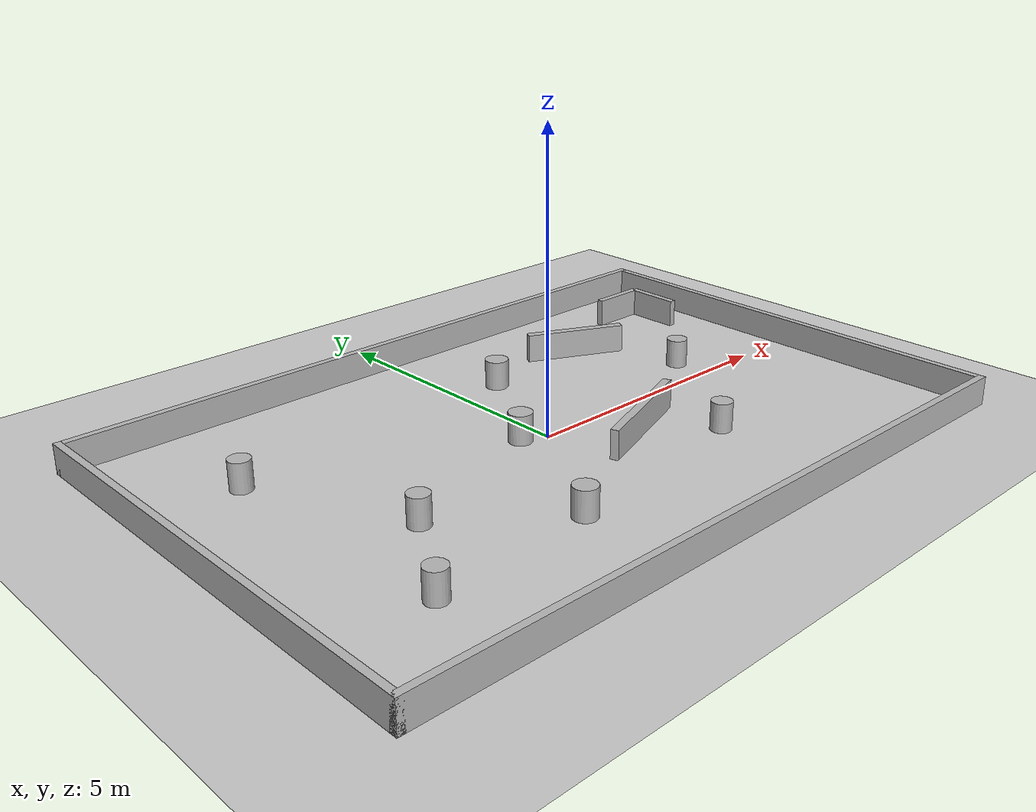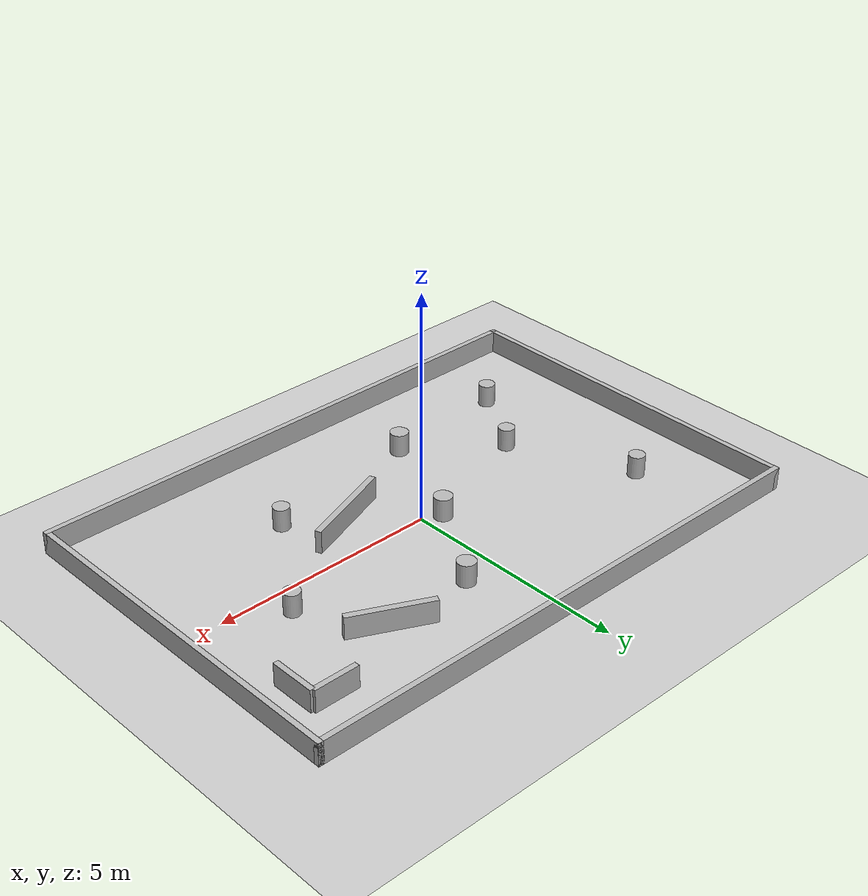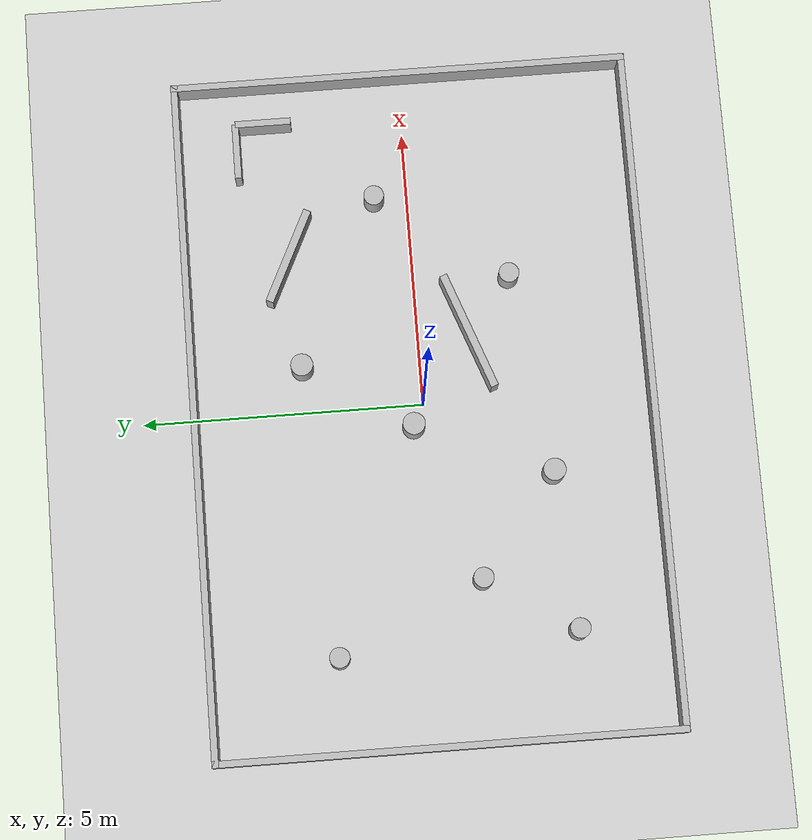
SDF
<?xml version='1.0' encoding='ASCII'?>
<sdf version='1.6'>
  <world name='obstacles_world'>
    <gravity>0 0 -9.8</gravity>
    <physics type='ode'>
      <max_step_size>0.01</max_step_size>
      <real_time_factor>1</real_time_factor>
      <max_contacts>10</max_contacts>
    </physics>
  <plugin filename="gz-sim-physics-system"
          name="gz::sim::systems::Physics"/>

  <plugin filename="gz-sim-user-commands-system"
          name="gz::sim::systems::UserCommands"/>

  <plugin filename="gz-sim-scene-broadcaster-system"
          name="gz::sim::systems::SceneBroadcaster"/>

  <!-- TĆ¼m kamera / lidar vb sensĆ¶rler iĆ§in -->
  <plugin filename="gz-sim-sensors-system"
          name="gz::sim::systems::Sensors">
    <render_engine>ogre2</render_engine>
  </plugin>

  <!-- IMU iĆ§in gerekli sistem pluginā€™i -->
  <plugin filename="gz-sim-imu-system"
          name="gz::sim::systems::Imu"/>

    <gui fullscreen="0">

      <!-- 3D scene -->
      <plugin filename="GzScene3D" name="3D View">
        <ignition-gui>
          <title>3D View</title>
          <property type="bool" key="showTitleBar">false</property>
          <property type="string" key="state">docked</property>
        </ignition-gui>

        <engine>ogre2</engine>
        <scene>scene</scene>
        <ambient_light>0.4 0.4 0.4</ambient_light>
        <background_color>0.8 0.8 0.8</background_color>
        <camera_pose>0.0 -6.0 4.0 0.0 0.42 1.57</camera_pose>
      </plugin>

      <!-- World control -->
      <plugin filename="WorldControl" name="World control">
        <ignition-gui>
          <title>World control</title>
          <property type="bool" key="showTitleBar">false</property>
          <property type="bool" key="resizable">false</property>
          <property type="double" key="height">72</property>
          <property type="double" key="width">121</property>
          <property type="double" key="z">1</property>

          <property type="string" key="state">floating</property>
          <anchors target="3D View">
            <line own="left" target="left"/>
            <line own="bottom" target="bottom"/>
          </anchors>
        </ignition-gui>

        <play_pause>true</play_pause>
        <step>true</step>
        <start_paused>true</start_paused>

      </plugin>

      <!-- World statistics -->
      <plugin filename="WorldStats" name="World stats">
        <ignition-gui>
          <title>World stats</title>
          <property type="bool" key="showTitleBar">false</property>
          <property type="bool" key="resizable">false</property>
          <property type="double" key="height">110</property>
          <property type="double" key="width">290</property>
          <property type="double" key="z">1</property>

          <property type="string" key="state">floating</property>
          <anchors target="3D View">
            <line own="right" target="right"/>
            <line own="bottom" target="bottom"/>
          </anchors>
        </ignition-gui>

        <sim_time>true</sim_time>
        <real_time>true</real_time>
        <real_time_factor>true</real_time_factor>
        <iterations>true</iterations>
      </plugin>

      <plugin filename="TransformControl" name="Transform control">
          <ignition-gui>
              <property type="bool" key="showTitleBar">false</property>
              <property key="x" type="double">0</property>
              <property key="y" type="double">0</property>
              <property key="width" type="double">250</property>
              <property key="height" type="double">50</property>
              <property key="state" type="string">floating</property>
              <property key="cardBackground" type="string">#666666</property>
          </ignition-gui>
      </plugin>
      <plugin filename="Shapes" name="Shapes">
          <ignition-gui>
              <property type="bool" key="showTitleBar">false</property>
              <property key="x" type="double">250</property>
              <property key="y" type="double">0</property>
              <property key="width" type="double">150</property>
              <property key="height" type="double">50</property>
              <property key="state" type="string">floating</property>
              <property key="cardBackground" type="string">#666666</property>
          </ignition-gui>
      </plugin>
      <plugin filename="Screenshot" name="Screenshot">
          <ignition-gui>
              <property type="bool" key="showTitleBar">false</property>
              <property key="x" type="double">400</property>
              <property key="y" type="double">0</property>
              <property key="width" type="double">50</property>
              <property key="height" type="double">50</property>
              <property key="state" type="string">floating</property>
              <property key="cardBackground" type="string">#666666</property>
          </ignition-gui>
      </plugin>
      <plugin filename="ComponentInspector" name="Component inspector">
          <ignition-gui>
              <property key="x" type="double">0</property>
              <property key="y" type="double">0</property>
              <property key="width" type="double">400</property>
              <property key="height" type="double">375</property>
              <property key="state" type="string">docked_collapsed</property>
          </ignition-gui>
      </plugin>
      <plugin filename="EntityTree" name="Entity tree">
          <ignition-gui>
              <property key="x" type="double">0</property>
              <property key="y" type="double">0</property>
              <property key="width" type="double">400</property>
              <property key="height" type="double">375</property>
              <property key="state" type="string">docked_collapsed</property>
          </ignition-gui>
      </plugin>
      <plugin filename="Teleop" name="Teleop">
          <ignition-gui>
              <property key="x" type="double">0</property>
              <property key="y" type="double">0</property>
              <property key="width" type="double">400</property>
              <property key="height" type="double">900</property>
              <property key="state" type="string">docked</property>
          </ignition-gui>
          <topic>/cmd_vel</topic>
      </plugin>
    </gui>

    <scene>
      <ambient>1 1 1 1</ambient>
      <background>0.3 0.7 0.9 1</background>
      <shadows>0</shadows>
      <grid>false</grid>
    </scene>

    <light type="directional" name="sun">
      <cast_shadows>0</cast_shadows>
      <pose>-5 -3 10 0 0 0</pose>
      <diffuse>1 1 1 1</diffuse>
      <specular>1 1 1 1</specular>
      <direction>0 0 -1</direction>
    </light>

    <model name='ground_plane'>
      <static>true</static>
      <link name='link'>
        <collision name='collision'>
          <geometry>
            <plane>
              <normal>0 0 1</normal>
              <size>100 100</size>
            </plane>
          </geometry>
          <surface>
            <friction>
              <ode/>
            </friction>
            <bounce/>
            <contact/>
          </surface>
        </collision>
        <visual name='visual'>
          <geometry>
            <plane>
              <normal>0 0 1</normal>
              <size>100 100</size>
            </plane>
          </geometry>
          <material>
            <ambient>0.8 0.8 0.8 1</ambient>
            <diffuse>0.8 0.8 0.8 1</diffuse>
            <specular>0.8 0.8 0.8 1</specular>
          </material>
        </visual>
        <pose>0 0 0 0 -0 0</pose>
        <inertial>
          <pose>0 0 0 0 -0 0</pose>
          <mass>1</mass>
          <inertia>
            <ixx>1</ixx>
            <ixy>0</ixy>
            <ixz>0</ixz>
            <iyy>1</iyy>
            <iyz>0</iyz>
            <izz>1</izz>
          </inertia>
        </inertial>
        <enable_wind>false</enable_wind>
      </link>
      <pose>0 0 0 0 -0 0</pose>
      <self_collide>false</self_collide>
    </model>

    <model name="boundary_walls">
      <static>true</static>

      <!-- Larger test area: x = [-6, 6], y = [-4, 4] -->
      <link name="north_wall">
        <pose>0 4.06 0.25 0 0 0</pose>
        <collision name="col">
          <geometry><box><size>12.24 0.12 0.50</size></box></geometry>
        </collision>
        <visual name="vis">
          <geometry><box><size>12.24 0.12 0.50</size></box></geometry>
        </visual>
      </link>

      <link name="south_wall">
        <pose>0 -4.06 0.25 0 0 0</pose>
        <collision name="col">
          <geometry><box><size>12.24 0.12 0.50</size></box></geometry>
        </collision>
        <visual name="vis">
          <geometry><box><size>12.24 0.12 0.50</size></box></geometry>
        </visual>
      </link>

      <link name="east_wall">
        <pose>6.06 0 0.25 0 0 0</pose>
        <collision name="col">
          <geometry><box><size>0.12 8.24 0.50</size></box></geometry>
        </collision>
        <visual name="vis">
          <geometry><box><size>0.12 8.24 0.50</size></box></geometry>
        </visual>
      </link>

      <link name="west_wall">
        <pose>-6.06 0 0.25 0 0 0</pose>
        <collision name="col">
          <geometry><box><size>0.12 8.24 0.50</size></box></geometry>
        </collision>
        <visual name="vis">
          <geometry><box><size>0.12 8.24 0.50</size></box></geometry>
        </visual>
      </link>
    </model>

    <!-- Navigation-friendly obstacle set:
         - not too symmetric
         - enough space for A* to find alternatives
         - good for recovery / replanning tests
    -->
    <model name="navigation_test_obstacles">
      <static>true</static>

      <!-- Left-side sparse cylinders -->
      <link name="cyl_left_1">
        <pose>-4.2 -2.4 0.25 0 0 0</pose>
        <collision name="col"><geometry><cylinder><radius>0.18</radius><length>0.50</length></cylinder></geometry></collision>
        <visual name="vis"><geometry><cylinder><radius>0.18</radius><length>0.50</length></cylinder></geometry></visual>
      </link>

      <link name="cyl_left_2">
        <pose>-3.2 -0.8 0.25 0 0 0</pose>
        <collision name="col"><geometry><cylinder><radius>0.18</radius><length>0.50</length></cylinder></geometry></collision>
        <visual name="vis"><geometry><cylinder><radius>0.18</radius><length>0.50</length></cylinder></geometry></visual>
      </link>

      <link name="cyl_left_3">
        <pose>-4.4 1.8 0.25 0 0 0</pose>
        <collision name="col"><geometry><cylinder><radius>0.18</radius><length>0.50</length></cylinder></geometry></collision>
        <visual name="vis"><geometry><cylinder><radius>0.18</radius><length>0.50</length></cylinder></geometry></visual>
      </link>

      <!-- Middle staggered obstacles -->
      <link name="cyl_mid_1">
        <pose>-1.4 -2.2 0.25 0 0 0</pose>
        <collision name="col"><geometry><cylinder><radius>0.20</radius><length>0.50</length></cylinder></geometry></collision>
        <visual name="vis"><geometry><cylinder><radius>0.20</radius><length>0.50</length></cylinder></geometry></visual>
      </link>

      <link name="cyl_mid_2">
        <pose>-0.4 0.2 0.25 0 0 0</pose>
        <collision name="col"><geometry><cylinder><radius>0.20</radius><length>0.50</length></cylinder></geometry></collision>
        <visual name="vis"><geometry><cylinder><radius>0.20</radius><length>0.50</length></cylinder></geometry></visual>
      </link>

      <link name="cyl_mid_3">
        <pose>0.8 2.1 0.25 0 0 0</pose>
        <collision name="col"><geometry><cylinder><radius>0.20</radius><length>0.50</length></cylinder></geometry></collision>
        <visual name="vis"><geometry><cylinder><radius>0.20</radius><length>0.50</length></cylinder></geometry></visual>
      </link>

      <!-- Right-side obstacles, leaving an alternate corridor -->
      <link name="cyl_right_1">
        <pose>2.2 -1.7 0.25 0 0 0</pose>
        <collision name="col"><geometry><cylinder><radius>0.18</radius><length>0.50</length></cylinder></geometry></collision>
        <visual name="vis"><geometry><cylinder><radius>0.18</radius><length>0.50</length></cylinder></geometry></visual>
      </link>

      <link name="cyl_right_2">
        <pose>3.8 0.6 0.25 0 0 0</pose>
        <collision name="col"><geometry><cylinder><radius>0.18</radius><length>0.50</length></cylinder></geometry></collision>
        <visual name="vis"><geometry><cylinder><radius>0.18</radius><length>0.50</length></cylinder></geometry></visual>
      </link>
    </model>

    <!-- Two wall segments create a mild maze, but not a trap -->
    <model name="navigation_wall_segments">
      <static>true</static>

      <link name="wall_segment_1">
        <pose>1.2 -0.9 0.25 0 0 0.35</pose>
        <collision name="col"><geometry><box><size>2.2 0.14 0.50</size></box></geometry></collision>
        <visual name="vis"><geometry><box><size>2.2 0.14 0.50</size></box></geometry></visual>
      </link>

      <link name="wall_segment_2">
        <pose>2.8 2.2 0.25 0 0 -0.45</pose>
        <collision name="col"><geometry><box><size>1.8 0.14 0.50</size></box></geometry></collision>
        <visual name="vis"><geometry><box><size>1.8 0.14 0.50</size></box></geometry></visual>
      </link>
    </model>

    <!-- Landmark L-shape kept, moved away from common goal corridors -->
    <model name="landmark_L_shape">
      <static>true</static>

      <link name="L1">
        <pose>4.8 3.0 0.25 0 0 0</pose>
        <collision name="col"><geometry><box><size>1.0 0.12 0.50</size></box></geometry></collision>
        <visual name="vis"><geometry><box><size>1.0 0.12 0.50</size></box></geometry></visual>
      </link>

      <link name="L2">
        <pose>5.3 2.5 0.25 0 0 0</pose>
        <collision name="col"><geometry><box><size>0.12 1.0 0.50</size></box></geometry></collision>
        <visual name="vis"><geometry><box><size>0.12 1.0 0.50</size></box></geometry></visual>
      </link>
    </model>

  </world>
</sdf>
